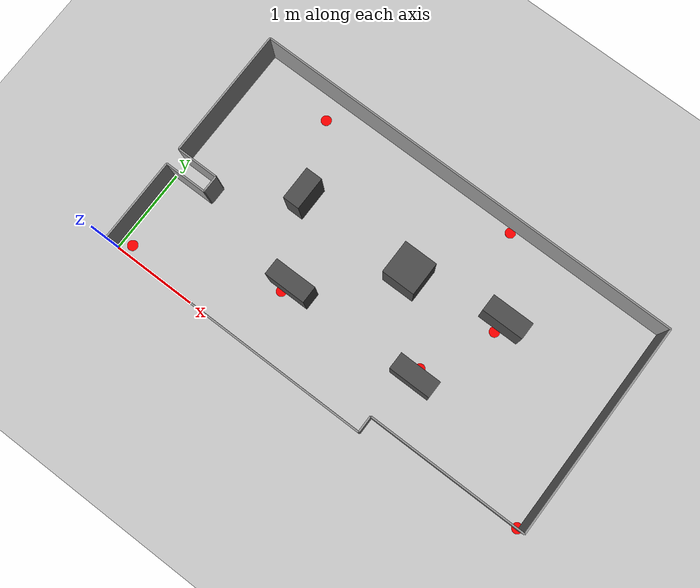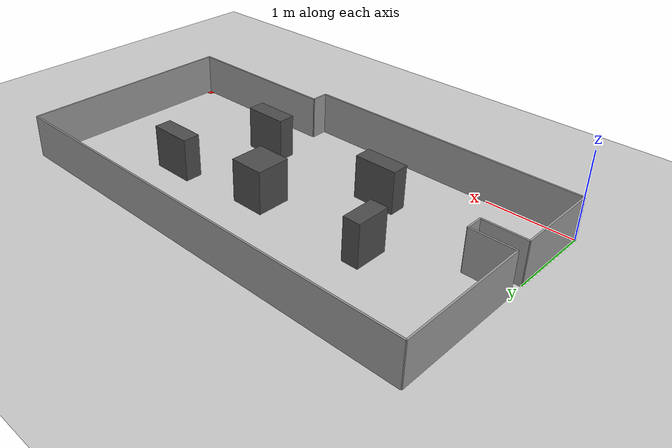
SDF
<?xml version="1.0" ?>
<sdf version="1.5">
  <world name="default">

    <include>
      <uri>model://ground_plane</uri>
    </include>

    <include>
      <uri>model://sun</uri>
    </include>

    <!-- Outer boundary walls -->

    <!-- (0,0)->(3.3,0): bottom-left horizontal segment -->
    <model name="wall_1">
      <static>true</static>
      <pose>1.65 0 0.25 0 0 0</pose>
      <link name="link">
        <collision name="collision">
          <geometry><box><size>3.3 0.02 0.5</size></box></geometry>
        </collision>
        <visual name="visual">
          <geometry><box><size>3.3 0.02 0.5</size></box></geometry>
          <material><script><name>Gazebo/Grey</name></script></material>
        </visual>
      </link>
    </model>

    <!-- (3.3,0)->(3.3,0.2): short vertical step -->
    <model name="wall_2">
      <static>true</static>
      <pose>3.3 0.1 0.25 0 0 0</pose>
      <link name="link">
        <collision name="collision">
          <geometry><box><size>0.02 0.2 0.5</size></box></geometry>
        </collision>
        <visual name="visual">
          <geometry><box><size>0.02 0.2 0.5</size></box></geometry>
          <material><script><name>Gazebo/Grey</name></script></material>
        </visual>
      </link>
    </model>

    <!-- (3.3,0.2)->(5.21,0.2): bottom-right horizontal segment -->
    <model name="wall_3">
      <static>true</static>
      <pose>4.255 0.2 0.25 0 0 0</pose>
      <link name="link">
        <collision name="collision">
          <geometry><box><size>1.91 0.02 0.5</size></box></geometry>
        </collision>
        <visual name="visual">
          <geometry><box><size>1.91 0.02 0.5</size></box></geometry>
          <material><script><name>Gazebo/Grey</name></script></material>
        </visual>
      </link>
    </model>

    <!-- (5.21,0.2)->(5.21,2.75): right wall -->
    <model name="wall_4">
      <static>true</static>
      <pose>5.21 1.475 0.25 0 0 0</pose>
      <link name="link">
        <collision name="collision">
          <geometry><box><size>0.02 2.55 0.5</size></box></geometry>
        </collision>
        <visual name="visual">
          <geometry><box><size>0.02 2.55 0.5</size></box></geometry>
          <material><script><name>Gazebo/Grey</name></script></material>
        </visual>
      </link>
    </model>

    <!-- (5.21,2.75)->(0,2.75): top wall -->
    <model name="wall_5">
      <static>true</static>
      <pose>2.605 2.75 0.25 0 0 0</pose>
      <link name="link">
        <collision name="collision">
          <geometry><box><size>5.21 0.02 0.5</size></box></geometry>
        </collision>
        <visual name="visual">
          <geometry><box><size>5.21 0.02 0.5</size></box></geometry>
          <material><script><name>Gazebo/Grey</name></script></material>
        </visual>
      </link>
    </model>

    <!-- (0,0)->(0,1): left wall lower segment -->
    <model name="wall_6">
      <static>true</static>
      <pose>0 0.5 0.25 0 0 0</pose>
      <link name="link">
        <collision name="collision">
          <geometry><box><size>0.02 1.0 0.5</size></box></geometry>
        </collision>
        <visual name="visual">
          <geometry><box><size>0.02 1.0 0.5</size></box></geometry>
          <material><script><name>Gazebo/Grey</name></script></material>
        </visual>
      </link>
    </model>

    <!-- (0,1)->(0.5,1): horizontal notch bottom -->
    <model name="wall_7">
      <static>true</static>
      <pose>0.25 1.0 0.25 0 0 0</pose>
      <link name="link">
        <collision name="collision">
          <geometry><box><size>0.5 0.02 0.5</size></box></geometry>
        </collision>
        <visual name="visual">
          <geometry><box><size>0.5 0.02 0.5</size></box></geometry>
          <material><script><name>Gazebo/Grey</name></script></material>
        </visual>
      </link>
    </model>

    <!-- (0.5,1)->(0.5,1.2): vertical notch right side -->
    <model name="wall_8">
      <static>true</static>
      <pose>0.5 1.1 0.25 0 0 0</pose>
      <link name="link">
        <collision name="collision">
          <geometry><box><size>0.02 0.2 0.5</size></box></geometry>
        </collision>
        <visual name="visual">
          <geometry><box><size>0.02 0.2 0.5</size></box></geometry>
          <material><script><name>Gazebo/Grey</name></script></material>
        </visual>
      </link>
    </model>

    <!-- (0.5,1.2)->(0,1.2): horizontal notch top -->
    <model name="wall_9">
      <static>true</static>
      <pose>0.25 1.2 0.25 0 0 0</pose>
      <link name="link">
        <collision name="collision">
          <geometry><box><size>0.5 0.02 0.5</size></box></geometry>
        </collision>
        <visual name="visual">
          <geometry><box><size>0.5 0.02 0.5</size></box></geometry>
          <material><script><name>Gazebo/Grey</name></script></material>
        </visual>
      </link>
    </model>

    <!-- (0,1.2)->(0,2.75): left wall upper segment -->
    <model name="wall_10">
      <static>true</static>
      <pose>0 1.975 0.25 0 0 0</pose>
      <link name="link">
        <collision name="collision">
          <geometry><box><size>0.02 1.55 0.5</size></box></geometry>
        </collision>
        <visual name="visual">
          <geometry><box><size>0.02 1.55 0.5</size></box></geometry>
          <material><script><name>Gazebo/Grey</name></script></material>
        </visual>
      </link>
    </model>

    <!-- Rectangle obstacle 1: (1.2,1.45)-(1.4,1.85) -->
    <model name="obstacle_1">
      <static>true</static>
      <pose>1.3 1.65 0.25 0 0 0</pose>
      <link name="link">
        <collision name="collision">
          <geometry><box><size>0.2 0.4 0.5</size></box></geometry>
        </collision>
        <visual name="visual">
          <geometry><box><size>0.2 0.4 0.5</size></box></geometry>
          <material><script><name>Gazebo/DarkGrey</name></script></material>
        </visual>
      </link>
    </model>

    <!-- Rectangle obstacle 2: (2.5,1.45)-(2.9,1.85) -->
    <model name="obstacle_2">
      <static>true</static>
      <pose>2.7 1.65 0.25 0 0 0</pose>
      <link name="link">
        <collision name="collision">
          <geometry><box><size>0.4 0.4 0.5</size></box></geometry>
        </collision>
        <visual name="visual">
          <geometry><box><size>0.4 0.4 0.5</size></box></geometry>
          <material><script><name>Gazebo/DarkGrey</name></script></material>
        </visual>
      </link>
    </model>

    <!-- Valve 0: (1.55,0.7)-(2.05,0.9) -->
    <model name="valve_0">
      <static>true</static>
      <pose>1.8 0.8 0.25 0 0 0</pose>
      <link name="link">
        <collision name="collision">
          <geometry><box><size>0.5 0.2 0.5</size></box></geometry>
        </collision>
        <visual name="visual">
          <geometry><box><size>0.5 0.2 0.5</size></box></geometry>
          <material><script><name>Gazebo/DarkGrey</name></script></material>
        </visual>
      </link>
    </model>

    <!-- valve 1: (3.16,0.7)-(3.66,0.9) -->
    <model name="valve_1">
      <static>true</static>
      <pose>3.41 0.8 0.25 0 0 0</pose>
      <link name="link">
        <collision name="collision">
          <geometry><box><size>0.5 0.2 0.5</size></box></geometry>
        </collision>
        <visual name="visual">
          <geometry><box><size>0.5 0.2 0.5</size></box></geometry>
          <material><script><name>Gazebo/DarkGrey</name></script></material>
        </visual>
      </link>
    </model>

    <!-- equipment: (3.56,1.75)-(4.06,1.95) -->
    <model name="equipment">
      <static>true</static>
      <pose>3.81 1.85 0.25 0 0 0</pose>
      <link name="link">
        <collision name="collision">
          <geometry><box><size>0.5 0.2 0.5</size></box></geometry>
        </collision>
        <visual name="visual">
          <geometry><box><size>0.5 0.2 0.5</size></box></geometry>
          <material><script><name>Gazebo/DarkGrey</name></script></material>
        </visual>
      </link>
    </model>

    <!-- Waypoint markers -->
    <model name="wp_0">
      <static>true</static>
      <pose>0.11 0.11 0.001 0 0 0</pose>
      <link name="link">
        <visual name="visual">
          <geometry><cylinder><radius>0.06</radius><length>0.002</length></cylinder></geometry>
          <material><ambient>1 0 0 1</ambient><diffuse>1 0 0 1</diffuse></material>
        </visual>
      </link>
    </model>

    <model name="wp_1">
      <static>true</static>
      <pose>1.71 0.69 0.001 0 0 0</pose>
      <link name="link">
        <visual name="visual">
          <geometry><cylinder><radius>0.06</radius><length>0.002</length></cylinder></geometry>
          <material><ambient>1 0 0 1</ambient><diffuse>1 0 0 1</diffuse></material>
        </visual>
      </link>
    </model>

    <model name="wp_2">
      <static>true</static>
      <pose>3.4 0.92 0.001 0 0 0</pose>
      <link name="link">
        <visual name="visual">
          <geometry><cylinder><radius>0.06</radius><length>0.002</length></cylinder></geometry>
          <material><ambient>1 0 0 1</ambient><diffuse>1 0 0 1</diffuse></material>
        </visual>
      </link>
    </model>

    <model name="wp_3">
      <static>true</static>
      <pose>3.3 2.7 0.001 0 0 0</pose>
      <link name="link">
        <visual name="visual">
          <geometry><cylinder><radius>0.06</radius><length>0.002</length></cylinder></geometry>
          <material><ambient>1 0 0 1</ambient><diffuse>1 0 0 1</diffuse></material>
        </visual>
      </link>
    </model>

    <model name="wp_4">
      <static>true</static>
      <pose>5.19 0.21 0.001 0 0 0</pose>
      <link name="link">
        <visual name="visual">
          <geometry><cylinder><radius>0.06</radius><length>0.002</length></cylinder></geometry>
          <material><ambient>1 0 0 1</ambient><diffuse>1 0 0 1</diffuse></material>
        </visual>
      </link>
    </model>

    <model name="wp_5">
      <static>true</static>
      <pose>0.92 2.5 0.001 0 0 0</pose>
      <link name="link">
        <visual name="visual">
          <geometry><cylinder><radius>0.06</radius><length>0.002</length></cylinder></geometry>
          <material><ambient>1 0 0 1</ambient><diffuse>1 0 0 1</diffuse></material>
        </visual>
      </link>
    </model>

    <model name="wp_6">
      <static>true</static>
      <pose>3.8 1.72 0.001 0 0 0</pose>
      <link name="link">
        <visual name="visual">
          <geometry><cylinder><radius>0.06</radius><length>0.002</length></cylinder></geometry>
          <material><ambient>1 0 0 1</ambient><diffuse>1 0 0 1</diffuse></material>
        </visual>
      </link>
    </model>

  </world>
</sdf>
